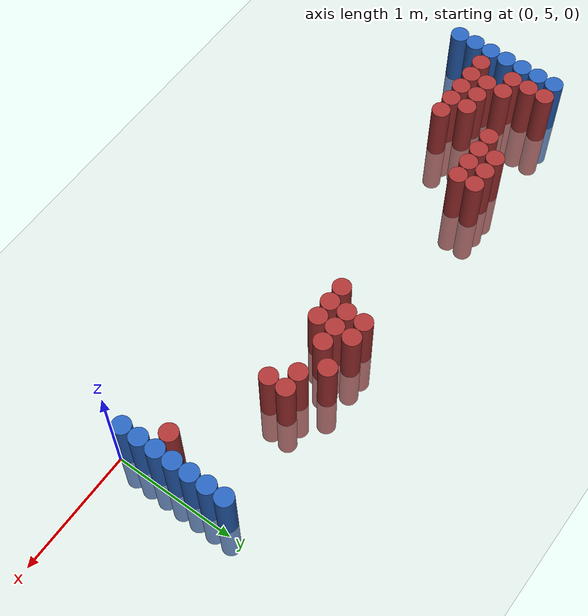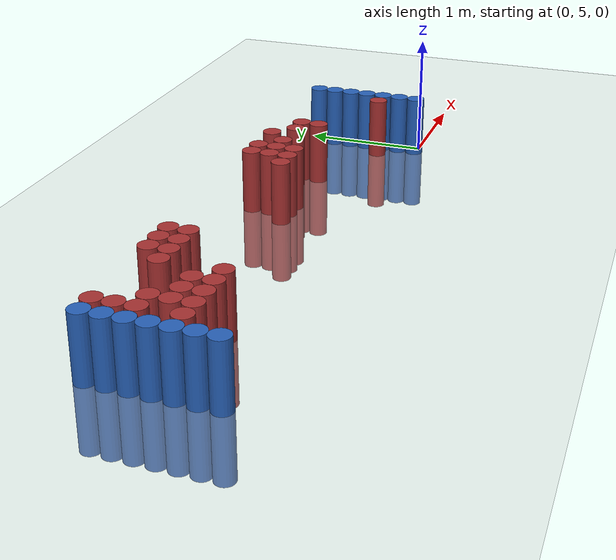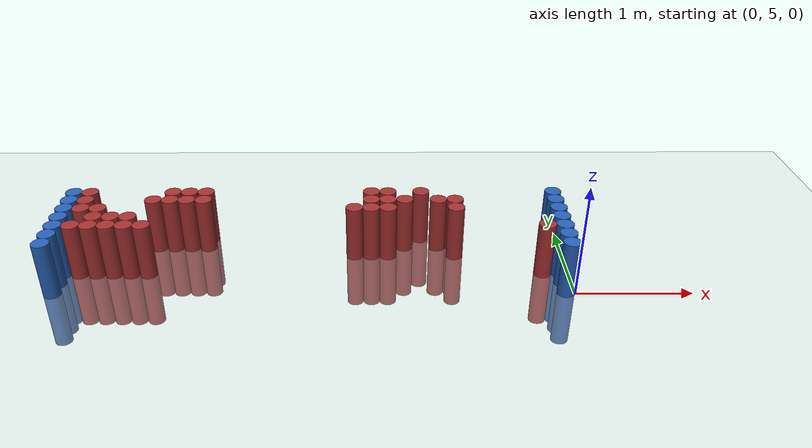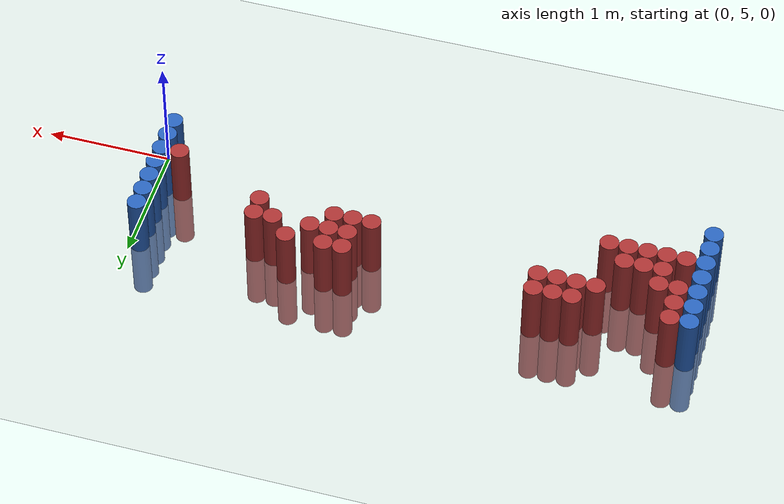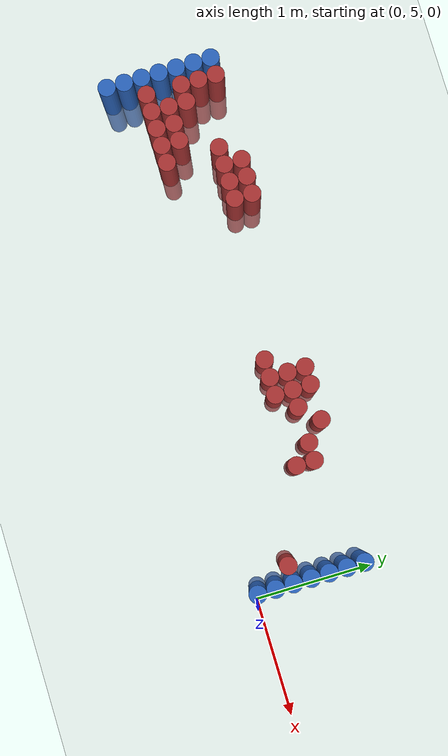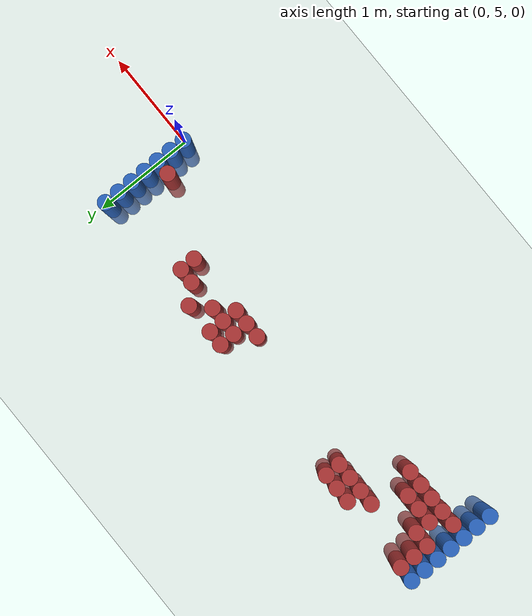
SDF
<sdf version="1.6">
 <world name="default">
  <model name="ground_plane">
   <static>1</static>
   <link name="link">
    <collision name="collision">
     <geometry><plane><normal>0 0 1</normal><size>100 100</size></plane></geometry>
     <surface><friction><ode><mu>100</mu><mu2>50</mu2></ode></friction></surface>
    </collision>
    <visual name="visual">
     <cast_shadows>0</cast_shadows>
     <geometry><plane><normal>0 0 1</normal><size>100 100</size></plane></geometry>
     <material>
      <script><uri>file://media/materials/scripts/gazebo.material</uri><name>Gazebo/Grey</name></script>
     </material>
    </visual>
   </link>
  </model>
  <model name="unit_cylinder_94">
   <static>1</static>
   <pose>-0.075000 5.025000 0.000000 0.000000 0.000000 0.000000</pose>
   <link name="link">
    <inertial>
     <mass>1</mass>
     <inertia><ixx>0.145833</ixx><ixy>0</ixy><ixz>0</ixz><iyy>0.145833</iyy><iyz>0</iyz><izz>0.125</izz></inertia>
    </inertial>
    <collision name="collision">
     <geometry><cylinder><radius>0.075000</radius><length>1</length></cylinder></geometry>
    </collision>
    <visual name="visual">
     <geometry><cylinder><radius>0.075000</radius><length>1</length></cylinder></geometry>
     <material>
      <ambient>0.152000 0.379000 0.720000 1</ambient>
      <diffuse>0.152000 0.379000 0.720000 1</diffuse>
     </material>
     <material>
      <script><name>Gazebo/Grey</name><uri>file://media/materials/scripts/gazebo.material</uri></script>
     </material>
    </visual>
   </link>
  </model>
  <model name="unit_cylinder_95">
   <static>1</static>
   <pose>-4.425000 5.025000 0.000000 0.000000 0.000000 0.000000</pose>
   <link name="link">
    <inertial>
     <mass>1</mass>
     <inertia><ixx>0.145833</ixx><ixy>0</ixy><ixz>0</ixz><iyy>0.145833</iyy><iyz>0</iyz><izz>0.125</izz></inertia>
    </inertial>
    <collision name="collision">
     <geometry><cylinder><radius>0.075000</radius><length>1</length></cylinder></geometry>
    </collision>
    <visual name="visual">
     <geometry><cylinder><radius>0.075000</radius><length>1</length></cylinder></geometry>
     <material>
      <ambient>0.152000 0.379000 0.720000 1</ambient>
      <diffuse>0.152000 0.379000 0.720000 1</diffuse>
     </material>
     <material>
      <script><name>Gazebo/Grey</name><uri>file://media/materials/scripts/gazebo.material</uri></script>
     </material>
    </visual>
   </link>
  </model>
  <model name="unit_cylinder_96">
   <static>1</static>
   <pose>-4.425000 5.175000 0.000000 0.000000 0.000000 0.000000</pose>
   <link name="link">
    <inertial>
     <mass>1</mass>
     <inertia><ixx>0.145833</ixx><ixy>0</ixy><ixz>0</ixz><iyy>0.145833</iyy><iyz>0</iyz><izz>0.125</izz></inertia>
    </inertial>
    <collision name="collision">
     <geometry><cylinder><radius>0.075000</radius><length>1</length></cylinder></geometry>
    </collision>
    <visual name="visual">
     <geometry><cylinder><radius>0.075000</radius><length>1</length></cylinder></geometry>
     <material>
      <ambient>0.152000 0.379000 0.720000 1</ambient>
      <diffuse>0.152000 0.379000 0.720000 1</diffuse>
     </material>
     <material>
      <script><name>Gazebo/Grey</name><uri>file://media/materials/scripts/gazebo.material</uri></script>
     </material>
    </visual>
   </link>
  </model>
  <model name="unit_cylinder_97">
   <static>1</static>
   <pose>-4.425000 5.325000 0.000000 0.000000 0.000000 0.000000</pose>
   <link name="link">
    <inertial>
     <mass>1</mass>
     <inertia><ixx>0.145833</ixx><ixy>0</ixy><ixz>0</ixz><iyy>0.145833</iyy><iyz>0</iyz><izz>0.125</izz></inertia>
    </inertial>
    <collision name="collision">
     <geometry><cylinder><radius>0.075000</radius><length>1</length></cylinder></geometry>
    </collision>
    <visual name="visual">
     <geometry><cylinder><radius>0.075000</radius><length>1</length></cylinder></geometry>
     <material>
      <ambient>0.152000 0.379000 0.720000 1</ambient>
      <diffuse>0.152000 0.379000 0.720000 1</diffuse>
     </material>
     <material>
      <script><name>Gazebo/Grey</name><uri>file://media/materials/scripts/gazebo.material</uri></script>
     </material>
    </visual>
   </link>
  </model>
  <model name="unit_cylinder_98">
   <static>1</static>
   <pose>-4.425000 5.475000 0.000000 0.000000 0.000000 0.000000</pose>
   <link name="link">
    <inertial>
     <mass>1</mass>
     <inertia><ixx>0.145833</ixx><ixy>0</ixy><ixz>0</ixz><iyy>0.145833</iyy><iyz>0</iyz><izz>0.125</izz></inertia>
    </inertial>
    <collision name="collision">
     <geometry><cylinder><radius>0.075000</radius><length>1</length></cylinder></geometry>
    </collision>
    <visual name="visual">
     <geometry><cylinder><radius>0.075000</radius><length>1</length></cylinder></geometry>
     <material>
      <ambient>0.152000 0.379000 0.720000 1</ambient>
      <diffuse>0.152000 0.379000 0.720000 1</diffuse>
     </material>
     <material>
      <script><name>Gazebo/Grey</name><uri>file://media/materials/scripts/gazebo.material</uri></script>
     </material>
    </visual>
   </link>
  </model>
  <model name="unit_cylinder_99">
   <static>1</static>
   <pose>-4.425000 5.625000 0.000000 0.000000 0.000000 0.000000</pose>
   <link name="link">
    <inertial>
     <mass>1</mass>
     <inertia><ixx>0.145833</ixx><ixy>0</ixy><ixz>0</ixz><iyy>0.145833</iyy><iyz>0</iyz><izz>0.125</izz></inertia>
    </inertial>
    <collision name="collision">
     <geometry><cylinder><radius>0.075000</radius><length>1</length></cylinder></geometry>
    </collision>
    <visual name="visual">
     <geometry><cylinder><radius>0.075000</radius><length>1</length></cylinder></geometry>
     <material>
      <ambient>0.152000 0.379000 0.720000 1</ambient>
      <diffuse>0.152000 0.379000 0.720000 1</diffuse>
     </material>
     <material>
      <script><name>Gazebo/Grey</name><uri>file://media/materials/scripts/gazebo.material</uri></script>
     </material>
    </visual>
   </link>
  </model>
  <model name="unit_cylinder_100">
   <static>1</static>
   <pose>-4.425000 5.775000 0.000000 0.000000 0.000000 0.000000</pose>
   <link name="link">
    <inertial>
     <mass>1</mass>
     <inertia><ixx>0.145833</ixx><ixy>0</ixy><ixz>0</ixz><iyy>0.145833</iyy><iyz>0</iyz><izz>0.125</izz></inertia>
    </inertial>
    <collision name="collision">
     <geometry><cylinder><radius>0.075000</radius><length>1</length></cylinder></geometry>
    </collision>
    <visual name="visual">
     <geometry><cylinder><radius>0.075000</radius><length>1</length></cylinder></geometry>
     <material>
      <ambient>0.152000 0.379000 0.720000 1</ambient>
      <diffuse>0.152000 0.379000 0.720000 1</diffuse>
     </material>
     <material>
      <script><name>Gazebo/Grey</name><uri>file://media/materials/scripts/gazebo.material</uri></script>
     </material>
    </visual>
   </link>
  </model>
  <model name="unit_cylinder_101">
   <static>1</static>
   <pose>-4.425000 5.925000 0.000000 0.000000 0.000000 0.000000</pose>
   <link name="link">
    <inertial>
     <mass>1</mass>
     <inertia><ixx>0.145833</ixx><ixy>0</ixy><ixz>0</ixz><iyy>0.145833</iyy><iyz>0</iyz><izz>0.125</izz></inertia>
    </inertial>
    <collision name="collision">
     <geometry><cylinder><radius>0.075000</radius><length>1</length></cylinder></geometry>
    </collision>
    <visual name="visual">
     <geometry><cylinder><radius>0.075000</radius><length>1</length></cylinder></geometry>
     <material>
      <ambient>0.152000 0.379000 0.720000 1</ambient>
      <diffuse>0.152000 0.379000 0.720000 1</diffuse>
     </material>
     <material>
      <script><name>Gazebo/Grey</name><uri>file://media/materials/scripts/gazebo.material</uri></script>
     </material>
    </visual>
   </link>
  </model>
  <model name="unit_cylinder_126">
   <static>1</static>
   <pose>-4.275000 5.325000 0.000000 0.000000 0.000000 0.000000</pose>
   <link name="link">
    <inertial>
     <mass>1</mass>
     <inertia><ixx>0.145833</ixx><ixy>0</ixy><ixz>0</ixz><iyy>0.145833</iyy><iyz>0</iyz><izz>0.125</izz></inertia>
    </inertial>
    <collision name="collision">
     <geometry><cylinder><radius>0.075000</radius><length>1</length></cylinder></geometry>
    </collision>
    <visual name="visual">
     <geometry><cylinder><radius>0.075000</radius><length>1</length></cylinder></geometry>
     <material>
      <ambient>0.648000 0.192000 0.192000 1</ambient>
      <diffuse>0.648000 0.192000 0.192000 1</diffuse>
     </material>
     <material>
      <script><name>Gazebo/Grey</name><uri>file://media/materials/scripts/gazebo.material</uri></script>
     </material>
    </visual>
   </link>
  </model>
  <model name="unit_cylinder_127">
   <static>1</static>
   <pose>-4.275000 5.625000 0.000000 0.000000 0.000000 0.000000</pose>
   <link name="link">
    <inertial>
     <mass>1</mass>
     <inertia><ixx>0.145833</ixx><ixy>0</ixy><ixz>0</ixz><iyy>0.145833</iyy><iyz>0</iyz><izz>0.125</izz></inertia>
    </inertial>
    <collision name="collision">
     <geometry><cylinder><radius>0.075000</radius><length>1</length></cylinder></geometry>
    </collision>
    <visual name="visual">
     <geometry><cylinder><radius>0.075000</radius><length>1</length></cylinder></geometry>
     <material>
      <ambient>0.648000 0.192000 0.192000 1</ambient>
      <diffuse>0.648000 0.192000 0.192000 1</diffuse>
     </material>
     <material>
      <script><name>Gazebo/Grey</name><uri>file://media/materials/scripts/gazebo.material</uri></script>
     </material>
    </visual>
   </link>
  </model>
  <model name="unit_cylinder_128">
   <static>1</static>
   <pose>-4.275000 5.775000 0.000000 0.000000 0.000000 0.000000</pose>
   <link name="link">
    <inertial>
     <mass>1</mass>
     <inertia><ixx>0.145833</ixx><ixy>0</ixy><ixz>0</ixz><iyy>0.145833</iyy><iyz>0</iyz><izz>0.125</izz></inertia>
    </inertial>
    <collision name="collision">
     <geometry><cylinder><radius>0.075000</radius><length>1</length></cylinder></geometry>
    </collision>
    <visual name="visual">
     <geometry><cylinder><radius>0.075000</radius><length>1</length></cylinder></geometry>
     <material>
      <ambient>0.648000 0.192000 0.192000 1</ambient>
      <diffuse>0.648000 0.192000 0.192000 1</diffuse>
     </material>
     <material>
      <script><name>Gazebo/Grey</name><uri>file://media/materials/scripts/gazebo.material</uri></script>
     </material>
    </visual>
   </link>
  </model>
  <model name="unit_cylinder_129">
   <static>1</static>
   <pose>-4.275000 5.925000 0.000000 0.000000 0.000000 0.000000</pose>
   <link name="link">
    <inertial>
     <mass>1</mass>
     <inertia><ixx>0.145833</ixx><ixy>0</ixy><ixz>0</ixz><iyy>0.145833</iyy><iyz>0</iyz><izz>0.125</izz></inertia>
    </inertial>
    <collision name="collision">
     <geometry><cylinder><radius>0.075000</radius><length>1</length></cylinder></geometry>
    </collision>
    <visual name="visual">
     <geometry><cylinder><radius>0.075000</radius><length>1</length></cylinder></geometry>
     <material>
      <ambient>0.648000 0.192000 0.192000 1</ambient>
      <diffuse>0.648000 0.192000 0.192000 1</diffuse>
     </material>
     <material>
      <script><name>Gazebo/Grey</name><uri>file://media/materials/scripts/gazebo.material</uri></script>
     </material>
    </visual>
   </link>
  </model>
  <model name="unit_cylinder_148">
   <static>1</static>
   <pose>-4.125000 5.325000 0.000000 0.000000 0.000000 0.000000</pose>
   <link name="link">
    <inertial>
     <mass>1</mass>
     <inertia><ixx>0.145833</ixx><ixy>0</ixy><ixz>0</ixz><iyy>0.145833</iyy><iyz>0</iyz><izz>0.125</izz></inertia>
    </inertial>
    <collision name="collision">
     <geometry><cylinder><radius>0.075000</radius><length>1</length></cylinder></geometry>
    </collision>
    <visual name="visual">
     <geometry><cylinder><radius>0.075000</radius><length>1</length></cylinder></geometry>
     <material>
      <ambient>0.648000 0.192000 0.192000 1</ambient>
      <diffuse>0.648000 0.192000 0.192000 1</diffuse>
     </material>
     <material>
      <script><name>Gazebo/Grey</name><uri>file://media/materials/scripts/gazebo.material</uri></script>
     </material>
    </visual>
   </link>
  </model>
  <model name="unit_cylinder_149">
   <static>1</static>
   <pose>-4.125000 5.475000 0.000000 0.000000 0.000000 0.000000</pose>
   <link name="link">
    <inertial>
     <mass>1</mass>
     <inertia><ixx>0.145833</ixx><ixy>0</ixy><ixz>0</ixz><iyy>0.145833</iyy><iyz>0</iyz><izz>0.125</izz></inertia>
    </inertial>
    <collision name="collision">
     <geometry><cylinder><radius>0.075000</radius><length>1</length></cylinder></geometry>
    </collision>
    <visual name="visual">
     <geometry><cylinder><radius>0.075000</radius><length>1</length></cylinder></geometry>
     <material>
      <ambient>0.648000 0.192000 0.192000 1</ambient>
      <diffuse>0.648000 0.192000 0.192000 1</diffuse>
     </material>
     <material>
      <script><name>Gazebo/Grey</name><uri>file://media/materials/scripts/gazebo.material</uri></script>
     </material>
    </visual>
   </link>
  </model>
  <model name="unit_cylinder_150">
   <static>1</static>
   <pose>-4.125000 5.625000 0.000000 0.000000 0.000000 0.000000</pose>
   <link name="link">
    <inertial>
     <mass>1</mass>
     <inertia><ixx>0.145833</ixx><ixy>0</ixy><ixz>0</ixz><iyy>0.145833</iyy><iyz>0</iyz><izz>0.125</izz></inertia>
    </inertial>
    <collision name="collision">
     <geometry><cylinder><radius>0.075000</radius><length>1</length></cylinder></geometry>
    </collision>
    <visual name="visual">
     <geometry><cylinder><radius>0.075000</radius><length>1</length></cylinder></geometry>
     <material>
      <ambient>0.648000 0.192000 0.192000 1</ambient>
      <diffuse>0.648000 0.192000 0.192000 1</diffuse>
     </material>
     <material>
      <script><name>Gazebo/Grey</name><uri>file://media/materials/scripts/gazebo.material</uri></script>
     </material>
    </visual>
   </link>
  </model>
  <model name="unit_cylinder_153">
   <static>1</static>
   <pose>-3.975000 5.325000 0.000000 0.000000 0.000000 0.000000</pose>
   <link name="link">
    <inertial>
     <mass>1</mass>
     <inertia><ixx>0.145833</ixx><ixy>0</ixy><ixz>0</ixz><iyy>0.145833</iyy><iyz>0</iyz><izz>0.125</izz></inertia>
    </inertial>
    <collision name="collision">
     <geometry><cylinder><radius>0.075000</radius><length>1</length></cylinder></geometry>
    </collision>
    <visual name="visual">
     <geometry><cylinder><radius>0.075000</radius><length>1</length></cylinder></geometry>
     <material>
      <ambient>0.648000 0.192000 0.192000 1</ambient>
      <diffuse>0.648000 0.192000 0.192000 1</diffuse>
     </material>
     <material>
      <script><name>Gazebo/Grey</name><uri>file://media/materials/scripts/gazebo.material</uri></script>
     </material>
    </visual>
   </link>
  </model>
  <model name="unit_cylinder_154">
   <static>1</static>
   <pose>-3.975000 5.475000 0.000000 0.000000 0.000000 0.000000</pose>
   <link name="link">
    <inertial>
     <mass>1</mass>
     <inertia><ixx>0.145833</ixx><ixy>0</ixy><ixz>0</ixz><iyy>0.145833</iyy><iyz>0</iyz><izz>0.125</izz></inertia>
    </inertial>
    <collision name="collision">
     <geometry><cylinder><radius>0.075000</radius><length>1</length></cylinder></geometry>
    </collision>
    <visual name="visual">
     <geometry><cylinder><radius>0.075000</radius><length>1</length></cylinder></geometry>
     <material>
      <ambient>0.648000 0.192000 0.192000 1</ambient>
      <diffuse>0.648000 0.192000 0.192000 1</diffuse>
     </material>
     <material>
      <script><name>Gazebo/Grey</name><uri>file://media/materials/scripts/gazebo.material</uri></script>
     </material>
    </visual>
   </link>
  </model>
  <model name="unit_cylinder_155">
   <static>1</static>
   <pose>-3.825000 5.325000 0.000000 0.000000 0.000000 0.000000</pose>
   <link name="link">
    <inertial>
     <mass>1</mass>
     <inertia><ixx>0.145833</ixx><ixy>0</ixy><ixz>0</ixz><iyy>0.145833</iyy><iyz>0</iyz><izz>0.125</izz></inertia>
    </inertial>
    <collision name="collision">
     <geometry><cylinder><radius>0.075000</radius><length>1</length></cylinder></geometry>
    </collision>
    <visual name="visual">
     <geometry><cylinder><radius>0.075000</radius><length>1</length></cylinder></geometry>
     <material>
      <ambient>0.648000 0.192000 0.192000 1</ambient>
      <diffuse>0.648000 0.192000 0.192000 1</diffuse>
     </material>
     <material>
      <script><name>Gazebo/Grey</name><uri>file://media/materials/scripts/gazebo.material</uri></script>
     </material>
    </visual>
   </link>
  </model>
  <model name="unit_cylinder_156">
   <static>1</static>
   <pose>-3.825000 5.475000 0.000000 0.000000 0.000000 0.000000</pose>
   <link name="link">
    <inertial>
     <mass>1</mass>
     <inertia><ixx>0.145833</ixx><ixy>0</ixy><ixz>0</ixz><iyy>0.145833</iyy><iyz>0</iyz><izz>0.125</izz></inertia>
    </inertial>
    <collision name="collision">
     <geometry><cylinder><radius>0.075000</radius><length>1</length></cylinder></geometry>
    </collision>
    <visual name="visual">
     <geometry><cylinder><radius>0.075000</radius><length>1</length></cylinder></geometry>
     <material>
      <ambient>0.648000 0.192000 0.192000 1</ambient>
      <diffuse>0.648000 0.192000 0.192000 1</diffuse>
     </material>
     <material>
      <script><name>Gazebo/Grey</name><uri>file://media/materials/scripts/gazebo.material</uri></script>
     </material>
    </visual>
   </link>
  </model>
  <model name="unit_cylinder_158">
   <static>1</static>
   <pose>-3.675000 5.325000 0.000000 0.000000 0.000000 0.000000</pose>
   <link name="link">
    <inertial>
     <mass>1</mass>
     <inertia><ixx>0.145833</ixx><ixy>0</ixy><ixz>0</ixz><iyy>0.145833</iyy><iyz>0</iyz><izz>0.125</izz></inertia>
    </inertial>
    <collision name="collision">
     <geometry><cylinder><radius>0.075000</radius><length>1</length></cylinder></geometry>
    </collision>
    <visual name="visual">
     <geometry><cylinder><radius>0.075000</radius><length>1</length></cylinder></geometry>
     <material>
      <ambient>0.648000 0.192000 0.192000 1</ambient>
      <diffuse>0.648000 0.192000 0.192000 1</diffuse>
     </material>
     <material>
      <script><name>Gazebo/Grey</name><uri>file://media/materials/scripts/gazebo.material</uri></script>
     </material>
    </visual>
   </link>
  </model>
  <model name="unit_cylinder_159">
   <static>1</static>
   <pose>-3.675000 5.775000 0.000000 0.000000 0.000000 0.000000</pose>
   <link name="link">
    <inertial>
     <mass>1</mass>
     <inertia><ixx>0.145833</ixx><ixy>0</ixy><ixz>0</ixz><iyy>0.145833</iyy><iyz>0</iyz><izz>0.125</izz></inertia>
    </inertial>
    <collision name="collision">
     <geometry><cylinder><radius>0.075000</radius><length>1</length></cylinder></geometry>
    </collision>
    <visual name="visual">
     <geometry><cylinder><radius>0.075000</radius><length>1</length></cylinder></geometry>
     <material>
      <ambient>0.648000 0.192000 0.192000 1</ambient>
      <diffuse>0.648000 0.192000 0.192000 1</diffuse>
     </material>
     <material>
      <script><name>Gazebo/Grey</name><uri>file://media/materials/scripts/gazebo.material</uri></script>
     </material>
    </visual>
   </link>
  </model>
  <model name="unit_cylinder_165">
   <static>1</static>
   <pose>-3.525000 5.775000 0.000000 0.000000 0.000000 0.000000</pose>
   <link name="link">
    <inertial>
     <mass>1</mass>
     <inertia><ixx>0.145833</ixx><ixy>0</ixy><ixz>0</ixz><iyy>0.145833</iyy><iyz>0</iyz><izz>0.125</izz></inertia>
    </inertial>
    <collision name="collision">
     <geometry><cylinder><radius>0.075000</radius><length>1</length></cylinder></geometry>
    </collision>
    <visual name="visual">
     <geometry><cylinder><radius>0.075000</radius><length>1</length></cylinder></geometry>
     <material>
      <ambient>0.648000 0.192000 0.192000 1</ambient>
      <diffuse>0.648000 0.192000 0.192000 1</diffuse>
     </material>
     <material>
      <script><name>Gazebo/Grey</name><uri>file://media/materials/scripts/gazebo.material</uri></script>
     </material>
    </visual>
   </link>
  </model>
  <model name="unit_cylinder_166">
   <static>1</static>
   <pose>-3.525000 5.925000 0.000000 0.000000 0.000000 0.000000</pose>
   <link name="link">
    <inertial>
     <mass>1</mass>
     <inertia><ixx>0.145833</ixx><ixy>0</ixy><ixz>0</ixz><iyy>0.145833</iyy><iyz>0</iyz><izz>0.125</izz></inertia>
    </inertial>
    <collision name="collision">
     <geometry><cylinder><radius>0.075000</radius><length>1</length></cylinder></geometry>
    </collision>
    <visual name="visual">
     <geometry><cylinder><radius>0.075000</radius><length>1</length></cylinder></geometry>
     <material>
      <ambient>0.648000 0.192000 0.192000 1</ambient>
      <diffuse>0.648000 0.192000 0.192000 1</diffuse>
     </material>
     <material>
      <script><name>Gazebo/Grey</name><uri>file://media/materials/scripts/gazebo.material</uri></script>
     </material>
    </visual>
   </link>
  </model>
  <model name="unit_cylinder_172">
   <static>1</static>
   <pose>-3.375000 5.775000 0.000000 0.000000 0.000000 0.000000</pose>
   <link name="link">
    <inertial>
     <mass>1</mass>
     <inertia><ixx>0.145833</ixx><ixy>0</ixy><ixz>0</ixz><iyy>0.145833</iyy><iyz>0</iyz><izz>0.125</izz></inertia>
    </inertial>
    <collision name="collision">
     <geometry><cylinder><radius>0.075000</radius><length>1</length></cylinder></geometry>
    </collision>
    <visual name="visual">
     <geometry><cylinder><radius>0.075000</radius><length>1</length></cylinder></geometry>
     <material>
      <ambient>0.648000 0.192000 0.192000 1</ambient>
      <diffuse>0.648000 0.192000 0.192000 1</diffuse>
     </material>
     <material>
      <script><name>Gazebo/Grey</name><uri>file://media/materials/scripts/gazebo.material</uri></script>
     </material>
    </visual>
   </link>
  </model>
  <model name="unit_cylinder_173">
   <static>1</static>
   <pose>-3.375000 5.925000 0.000000 0.000000 0.000000 0.000000</pose>
   <link name="link">
    <inertial>
     <mass>1</mass>
     <inertia><ixx>0.145833</ixx><ixy>0</ixy><ixz>0</ixz><iyy>0.145833</iyy><iyz>0</iyz><izz>0.125</izz></inertia>
    </inertial>
    <collision name="collision">
     <geometry><cylinder><radius>0.075000</radius><length>1</length></cylinder></geometry>
    </collision>
    <visual name="visual">
     <geometry><cylinder><radius>0.075000</radius><length>1</length></cylinder></geometry>
     <material>
      <ambient>0.648000 0.192000 0.192000 1</ambient>
      <diffuse>0.648000 0.192000 0.192000 1</diffuse>
     </material>
     <material>
      <script><name>Gazebo/Grey</name><uri>file://media/materials/scripts/gazebo.material</uri></script>
     </material>
    </visual>
   </link>
  </model>
  <model name="unit_cylinder_176">
   <static>1</static>
   <pose>-3.225000 5.775000 0.000000 0.000000 0.000000 0.000000</pose>
   <link name="link">
    <inertial>
     <mass>1</mass>
     <inertia><ixx>0.145833</ixx><ixy>0</ixy><ixz>0</ixz><iyy>0.145833</iyy><iyz>0</iyz><izz>0.125</izz></inertia>
    </inertial>
    <collision name="collision">
     <geometry><cylinder><radius>0.075000</radius><length>1</length></cylinder></geometry>
    </collision>
    <visual name="visual">
     <geometry><cylinder><radius>0.075000</radius><length>1</length></cylinder></geometry>
     <material>
      <ambient>0.648000 0.192000 0.192000 1</ambient>
      <diffuse>0.648000 0.192000 0.192000 1</diffuse>
     </material>
     <material>
      <script><name>Gazebo/Grey</name><uri>file://media/materials/scripts/gazebo.material</uri></script>
     </material>
    </visual>
   </link>
  </model>
  <model name="unit_cylinder_177">
   <static>1</static>
   <pose>-3.225000 5.925000 0.000000 0.000000 0.000000 0.000000</pose>
   <link name="link">
    <inertial>
     <mass>1</mass>
     <inertia><ixx>0.145833</ixx><ixy>0</ixy><ixz>0</ixz><iyy>0.145833</iyy><iyz>0</iyz><izz>0.125</izz></inertia>
    </inertial>
    <collision name="collision">
     <geometry><cylinder><radius>0.075000</radius><length>1</length></cylinder></geometry>
    </collision>
    <visual name="visual">
     <geometry><cylinder><radius>0.075000</radius><length>1</length></cylinder></geometry>
     <material>
      <ambient>0.648000 0.192000 0.192000 1</ambient>
      <diffuse>0.648000 0.192000 0.192000 1</diffuse>
     </material>
     <material>
      <script><name>Gazebo/Grey</name><uri>file://media/materials/scripts/gazebo.material</uri></script>
     </material>
    </visual>
   </link>
  </model>
  <model name="unit_cylinder_189">
   <static>1</static>
   <pose>-1.875000 5.625000 0.000000 0.000000 0.000000 0.000000</pose>
   <link name="link">
    <inertial>
     <mass>1</mass>
     <inertia><ixx>0.145833</ixx><ixy>0</ixy><ixz>0</ixz><iyy>0.145833</iyy><iyz>0</iyz><izz>0.125</izz></inertia>
    </inertial>
    <collision name="collision">
     <geometry><cylinder><radius>0.075000</radius><length>1</length></cylinder></geometry>
    </collision>
    <visual name="visual">
     <geometry><cylinder><radius>0.075000</radius><length>1</length></cylinder></geometry>
     <material>
      <ambient>0.648000 0.192000 0.192000 1</ambient>
      <diffuse>0.648000 0.192000 0.192000 1</diffuse>
     </material>
     <material>
      <script><name>Gazebo/Grey</name><uri>file://media/materials/scripts/gazebo.material</uri></script>
     </material>
    </visual>
   </link>
  </model>
  <model name="unit_cylinder_193">
   <static>1</static>
   <pose>-1.725000 5.625000 0.000000 0.000000 0.000000 0.000000</pose>
   <link name="link">
    <inertial>
     <mass>1</mass>
     <inertia><ixx>0.145833</ixx><ixy>0</ixy><ixz>0</ixz><iyy>0.145833</iyy><iyz>0</iyz><izz>0.125</izz></inertia>
    </inertial>
    <collision name="collision">
     <geometry><cylinder><radius>0.075000</radius><length>1</length></cylinder></geometry>
    </collision>
    <visual name="visual">
     <geometry><cylinder><radius>0.075000</radius><length>1</length></cylinder></geometry>
     <material>
      <ambient>0.648000 0.192000 0.192000 1</ambient>
      <diffuse>0.648000 0.192000 0.192000 1</diffuse>
     </material>
     <material>
      <script><name>Gazebo/Grey</name><uri>file://media/materials/scripts/gazebo.material</uri></script>
     </material>
    </visual>
   </link>
  </model>
  <model name="unit_cylinder_194">
   <static>1</static>
   <pose>-1.725000 5.775000 0.000000 0.000000 0.000000 0.000000</pose>
   <link name="link">
    <inertial>
     <mass>1</mass>
     <inertia><ixx>0.145833</ixx><ixy>0</ixy><ixz>0</ixz><iyy>0.145833</iyy><iyz>0</iyz><izz>0.125</izz></inertia>
    </inertial>
    <collision name="collision">
     <geometry><cylinder><radius>0.075000</radius><length>1</length></cylinder></geometry>
    </collision>
    <visual name="visual">
     <geometry><cylinder><radius>0.075000</radius><length>1</length></cylinder></geometry>
     <material>
      <ambient>0.648000 0.192000 0.192000 1</ambient>
      <diffuse>0.648000 0.192000 0.192000 1</diffuse>
     </material>
     <material>
      <script><name>Gazebo/Grey</name><uri>file://media/materials/scripts/gazebo.material</uri></script>
     </material>
    </visual>
   </link>
  </model>
  <model name="unit_cylinder_195">
   <static>1</static>
   <pose>-1.725000 5.925000 0.000000 0.000000 0.000000 0.000000</pose>
   <link name="link">
    <inertial>
     <mass>1</mass>
     <inertia><ixx>0.145833</ixx><ixy>0</ixy><ixz>0</ixz><iyy>0.145833</iyy><iyz>0</iyz><izz>0.125</izz></inertia>
    </inertial>
    <collision name="collision">
     <geometry><cylinder><radius>0.075000</radius><length>1</length></cylinder></geometry>
    </collision>
    <visual name="visual">
     <geometry><cylinder><radius>0.075000</radius><length>1</length></cylinder></geometry>
     <material>
      <ambient>0.648000 0.192000 0.192000 1</ambient>
      <diffuse>0.648000 0.192000 0.192000 1</diffuse>
     </material>
     <material>
      <script><name>Gazebo/Grey</name><uri>file://media/materials/scripts/gazebo.material</uri></script>
     </material>
    </visual>
   </link>
  </model>
  <model name="unit_cylinder_199">
   <static>1</static>
   <pose>-1.575000 5.625000 0.000000 0.000000 0.000000 0.000000</pose>
   <link name="link">
    <inertial>
     <mass>1</mass>
     <inertia><ixx>0.145833</ixx><ixy>0</ixy><ixz>0</ixz><iyy>0.145833</iyy><iyz>0</iyz><izz>0.125</izz></inertia>
    </inertial>
    <collision name="collision">
     <geometry><cylinder><radius>0.075000</radius><length>1</length></cylinder></geometry>
    </collision>
    <visual name="visual">
     <geometry><cylinder><radius>0.075000</radius><length>1</length></cylinder></geometry>
     <material>
      <ambient>0.648000 0.192000 0.192000 1</ambient>
      <diffuse>0.648000 0.192000 0.192000 1</diffuse>
     </material>
     <material>
      <script><name>Gazebo/Grey</name><uri>file://media/materials/scripts/gazebo.material</uri></script>
     </material>
    </visual>
   </link>
  </model>
  <model name="unit_cylinder_200">
   <static>1</static>
   <pose>-1.575000 5.775000 0.000000 0.000000 0.000000 0.000000</pose>
   <link name="link">
    <inertial>
     <mass>1</mass>
     <inertia><ixx>0.145833</ixx><ixy>0</ixy><ixz>0</ixz><iyy>0.145833</iyy><iyz>0</iyz><izz>0.125</izz></inertia>
    </inertial>
    <collision name="collision">
     <geometry><cylinder><radius>0.075000</radius><length>1</length></cylinder></geometry>
    </collision>
    <visual name="visual">
     <geometry><cylinder><radius>0.075000</radius><length>1</length></cylinder></geometry>
     <material>
      <ambient>0.648000 0.192000 0.192000 1</ambient>
      <diffuse>0.648000 0.192000 0.192000 1</diffuse>
     </material>
     <material>
      <script><name>Gazebo/Grey</name><uri>file://media/materials/scripts/gazebo.material</uri></script>
     </material>
    </visual>
   </link>
  </model>
  <model name="unit_cylinder_201">
   <static>1</static>
   <pose>-1.575000 5.925000 0.000000 0.000000 0.000000 0.000000</pose>
   <link name="link">
    <inertial>
     <mass>1</mass>
     <inertia><ixx>0.145833</ixx><ixy>0</ixy><ixz>0</ixz><iyy>0.145833</iyy><iyz>0</iyz><izz>0.125</izz></inertia>
    </inertial>
    <collision name="collision">
     <geometry><cylinder><radius>0.075000</radius><length>1</length></cylinder></geometry>
    </collision>
    <visual name="visual">
     <geometry><cylinder><radius>0.075000</radius><length>1</length></cylinder></geometry>
     <material>
      <ambient>0.648000 0.192000 0.192000 1</ambient>
      <diffuse>0.648000 0.192000 0.192000 1</diffuse>
     </material>
     <material>
      <script><name>Gazebo/Grey</name><uri>file://media/materials/scripts/gazebo.material</uri></script>
     </material>
    </visual>
   </link>
  </model>
  <model name="unit_cylinder_208">
   <static>1</static>
   <pose>-1.425000 5.775000 0.000000 0.000000 0.000000 0.000000</pose>
   <link name="link">
    <inertial>
     <mass>1</mass>
     <inertia><ixx>0.145833</ixx><ixy>0</ixy><ixz>0</ixz><iyy>0.145833</iyy><iyz>0</iyz><izz>0.125</izz></inertia>
    </inertial>
    <collision name="collision">
     <geometry><cylinder><radius>0.075000</radius><length>1</length></cylinder></geometry>
    </collision>
    <visual name="visual">
     <geometry><cylinder><radius>0.075000</radius><length>1</length></cylinder></geometry>
     <material>
      <ambient>0.648000 0.192000 0.192000 1</ambient>
      <diffuse>0.648000 0.192000 0.192000 1</diffuse>
     </material>
     <material>
      <script><name>Gazebo/Grey</name><uri>file://media/materials/scripts/gazebo.material</uri></script>
     </material>
    </visual>
   </link>
  </model>
  <model name="unit_cylinder_211">
   <static>1</static>
   <pose>-1.275000 5.925000 0.000000 0.000000 0.000000 0.000000</pose>
   <link name="link">
    <inertial>
     <mass>1</mass>
     <inertia><ixx>0.145833</ixx><ixy>0</ixy><ixz>0</ixz><iyy>0.145833</iyy><iyz>0</iyz><izz>0.125</izz></inertia>
    </inertial>
    <collision name="collision">
     <geometry><cylinder><radius>0.075000</radius><length>1</length></cylinder></geometry>
    </collision>
    <visual name="visual">
     <geometry><cylinder><radius>0.075000</radius><length>1</length></cylinder></geometry>
     <material>
      <ambient>0.648000 0.192000 0.192000 1</ambient>
      <diffuse>0.648000 0.192000 0.192000 1</diffuse>
     </material>
     <material>
      <script><name>Gazebo/Grey</name><uri>file://media/materials/scripts/gazebo.material</uri></script>
     </material>
    </visual>
   </link>
  </model>
  <model name="unit_cylinder_217">
   <static>1</static>
   <pose>-1.125000 5.775000 0.000000 0.000000 0.000000 0.000000</pose>
   <link name="link">
    <inertial>
     <mass>1</mass>
     <inertia><ixx>0.145833</ixx><ixy>0</ixy><ixz>0</ixz><iyy>0.145833</iyy><iyz>0</iyz><izz>0.125</izz></inertia>
    </inertial>
    <collision name="collision">
     <geometry><cylinder><radius>0.075000</radius><length>1</length></cylinder></geometry>
    </collision>
    <visual name="visual">
     <geometry><cylinder><radius>0.075000</radius><length>1</length></cylinder></geometry>
     <material>
      <ambient>0.648000 0.192000 0.192000 1</ambient>
      <diffuse>0.648000 0.192000 0.192000 1</diffuse>
     </material>
     <material>
      <script><name>Gazebo/Grey</name><uri>file://media/materials/scripts/gazebo.material</uri></script>
     </material>
    </visual>
   </link>
  </model>
  <model name="unit_cylinder_221">
   <static>1</static>
   <pose>-0.975000 5.625000 0.000000 0.000000 0.000000 0.000000</pose>
   <link name="link">
    <inertial>
     <mass>1</mass>
     <inertia><ixx>0.145833</ixx><ixy>0</ixy><ixz>0</ixz><iyy>0.145833</iyy><iyz>0</iyz><izz>0.125</izz></inertia>
    </inertial>
    <collision name="collision">
     <geometry><cylinder><radius>0.075000</radius><length>1</length></cylinder></geometry>
    </collision>
    <visual name="visual">
     <geometry><cylinder><radius>0.075000</radius><length>1</length></cylinder></geometry>
     <material>
      <ambient>0.648000 0.192000 0.192000 1</ambient>
      <diffuse>0.648000 0.192000 0.192000 1</diffuse>
     </material>
     <material>
      <script><name>Gazebo/Grey</name><uri>file://media/materials/scripts/gazebo.material</uri></script>
     </material>
    </visual>
   </link>
  </model>
  <model name="unit_cylinder_222">
   <static>1</static>
   <pose>-0.975000 5.775000 0.000000 0.000000 0.000000 0.000000</pose>
   <link name="link">
    <inertial>
     <mass>1</mass>
     <inertia><ixx>0.145833</ixx><ixy>0</ixy><ixz>0</ixz><iyy>0.145833</iyy><iyz>0</iyz><izz>0.125</izz></inertia>
    </inertial>
    <collision name="collision">
     <geometry><cylinder><radius>0.075000</radius><length>1</length></cylinder></geometry>
    </collision>
    <visual name="visual">
     <geometry><cylinder><radius>0.075000</radius><length>1</length></cylinder></geometry>
     <material>
      <ambient>0.648000 0.192000 0.192000 1</ambient>
      <diffuse>0.648000 0.192000 0.192000 1</diffuse>
     </material>
     <material>
      <script><name>Gazebo/Grey</name><uri>file://media/materials/scripts/gazebo.material</uri></script>
     </material>
    </visual>
   </link>
  </model>
  <model name="unit_cylinder_238">
   <static>1</static>
   <pose>-0.225000 5.325000 0.000000 0.000000 0.000000 0.000000</pose>
   <link name="link">
    <inertial>
     <mass>1</mass>
     <inertia><ixx>0.145833</ixx><ixy>0</ixy><ixz>0</ixz><iyy>0.145833</iyy><iyz>0</iyz><izz>0.125</izz></inertia>
    </inertial>
    <collision name="collision">
     <geometry><cylinder><radius>0.075000</radius><length>1</length></cylinder></geometry>
    </collision>
    <visual name="visual">
     <geometry><cylinder><radius>0.075000</radius><length>1</length></cylinder></geometry>
     <material>
      <ambient>0.648000 0.192000 0.192000 1</ambient>
      <diffuse>0.648000 0.192000 0.192000 1</diffuse>
     </material>
     <material>
      <script><name>Gazebo/Grey</name><uri>file://media/materials/scripts/gazebo.material</uri></script>
     </material>
    </visual>
   </link>
  </model>
  <model name="unit_cylinder_250">
   <static>1</static>
   <pose>-0.075000 5.175000 0.000000 0.000000 0.000000 0.000000</pose>
   <link name="link">
    <inertial>
     <mass>1</mass>
     <inertia><ixx>0.145833</ixx><ixy>0</ixy><ixz>0</ixz><iyy>0.145833</iyy><iyz>0</iyz><izz>0.125</izz></inertia>
    </inertial>
    <collision name="collision">
     <geometry><cylinder><radius>0.075000</radius><length>1</length></cylinder></geometry>
    </collision>
    <visual name="visual">
     <geometry><cylinder><radius>0.075000</radius><length>1</length></cylinder></geometry>
     <material>
      <ambient>0.152000 0.379000 0.720000 1</ambient>
      <diffuse>0.152000 0.379000 0.720000 1</diffuse>
     </material>
     <material>
      <script><name>Gazebo/Grey</name><uri>file://media/materials/scripts/gazebo.material</uri></script>
     </material>
    </visual>
   </link>
  </model>
  <model name="unit_cylinder_251">
   <static>1</static>
   <pose>-0.075000 5.325000 0.000000 0.000000 0.000000 0.000000</pose>
   <link name="link">
    <inertial>
     <mass>1</mass>
     <inertia><ixx>0.145833</ixx><ixy>0</ixy><ixz>0</ixz><iyy>0.145833</iyy><iyz>0</iyz><izz>0.125</izz></inertia>
    </inertial>
    <collision name="collision">
     <geometry><cylinder><radius>0.075000</radius><length>1</length></cylinder></geometry>
    </collision>
    <visual name="visual">
     <geometry><cylinder><radius>0.075000</radius><length>1</length></cylinder></geometry>
     <material>
      <ambient>0.152000 0.379000 0.720000 1</ambient>
      <diffuse>0.152000 0.379000 0.720000 1</diffuse>
     </material>
     <material>
      <script><name>Gazebo/Grey</name><uri>file://media/materials/scripts/gazebo.material</uri></script>
     </material>
    </visual>
   </link>
  </model>
  <model name="unit_cylinder_252">
   <static>1</static>
   <pose>-0.075000 5.475000 0.000000 0.000000 0.000000 0.000000</pose>
   <link name="link">
    <inertial>
     <mass>1</mass>
     <inertia><ixx>0.145833</ixx><ixy>0</ixy><ixz>0</ixz><iyy>0.145833</iyy><iyz>0</iyz><izz>0.125</izz></inertia>
    </inertial>
    <collision name="collision">
     <geometry><cylinder><radius>0.075000</radius><length>1</length></cylinder></geometry>
    </collision>
    <visual name="visual">
     <geometry><cylinder><radius>0.075000</radius><length>1</length></cylinder></geometry>
     <material>
      <ambient>0.152000 0.379000 0.720000 1</ambient>
      <diffuse>0.152000 0.379000 0.720000 1</diffuse>
     </material>
     <material>
      <script><name>Gazebo/Grey</name><uri>file://media/materials/scripts/gazebo.material</uri></script>
     </material>
    </visual>
   </link>
  </model>
  <model name="unit_cylinder_253">
   <static>1</static>
   <pose>-0.075000 5.625000 0.000000 0.000000 0.000000 0.000000</pose>
   <link name="link">
    <inertial>
     <mass>1</mass>
     <inertia><ixx>0.145833</ixx><ixy>0</ixy><ixz>0</ixz><iyy>0.145833</iyy><iyz>0</iyz><izz>0.125</izz></inertia>
    </inertial>
    <collision name="collision">
     <geometry><cylinder><radius>0.075000</radius><length>1</length></cylinder></geometry>
    </collision>
    <visual name="visual">
     <geometry><cylinder><radius>0.075000</radius><length>1</length></cylinder></geometry>
     <material>
      <ambient>0.152000 0.379000 0.720000 1</ambient>
      <diffuse>0.152000 0.379000 0.720000 1</diffuse>
     </material>
     <material>
      <script><name>Gazebo/Grey</name><uri>file://media/materials/scripts/gazebo.material</uri></script>
     </material>
    </visual>
   </link>
  </model>
  <model name="unit_cylinder_254">
   <static>1</static>
   <pose>-0.075000 5.775000 0.000000 0.000000 0.000000 0.000000</pose>
   <link name="link">
    <inertial>
     <mass>1</mass>
     <inertia><ixx>0.145833</ixx><ixy>0</ixy><ixz>0</ixz><iyy>0.145833</iyy><iyz>0</iyz><izz>0.125</izz></inertia>
    </inertial>
    <collision name="collision">
     <geometry><cylinder><radius>0.075000</radius><length>1</length></cylinder></geometry>
    </collision>
    <visual name="visual">
     <geometry><cylinder><radius>0.075000</radius><length>1</length></cylinder></geometry>
     <material>
      <ambient>0.152000 0.379000 0.720000 1</ambient>
      <diffuse>0.152000 0.379000 0.720000 1</diffuse>
     </material>
     <material>
      <script><name>Gazebo/Grey</name><uri>file://media/materials/scripts/gazebo.material</uri></script>
     </material>
    </visual>
   </link>
  </model>
  <model name="unit_cylinder_255">
   <static>1</static>
   <pose>-0.075000 5.925000 0.000000 0.000000 0.000000 0.000000</pose>
   <link name="link">
    <inertial>
     <mass>1</mass>
     <inertia><ixx>0.145833</ixx><ixy>0</ixy><ixz>0</ixz><iyy>0.145833</iyy><iyz>0</iyz><izz>0.125</izz></inertia>
    </inertial>
    <collision name="collision">
     <geometry><cylinder><radius>0.075000</radius><length>1</length></cylinder></geometry>
    </collision>
    <visual name="visual">
     <geometry><cylinder><radius>0.075000</radius><length>1</length></cylinder></geometry>
     <material>
      <ambient>0.152000 0.379000 0.720000 1</ambient>
      <diffuse>0.152000 0.379000 0.720000 1</diffuse>
     </material>
     <material>
      <script><name>Gazebo/Grey</name><uri>file://media/materials/scripts/gazebo.material</uri></script>
     </material>
    </visual>
   </link>
  </model>
 </world>
</sdf>
